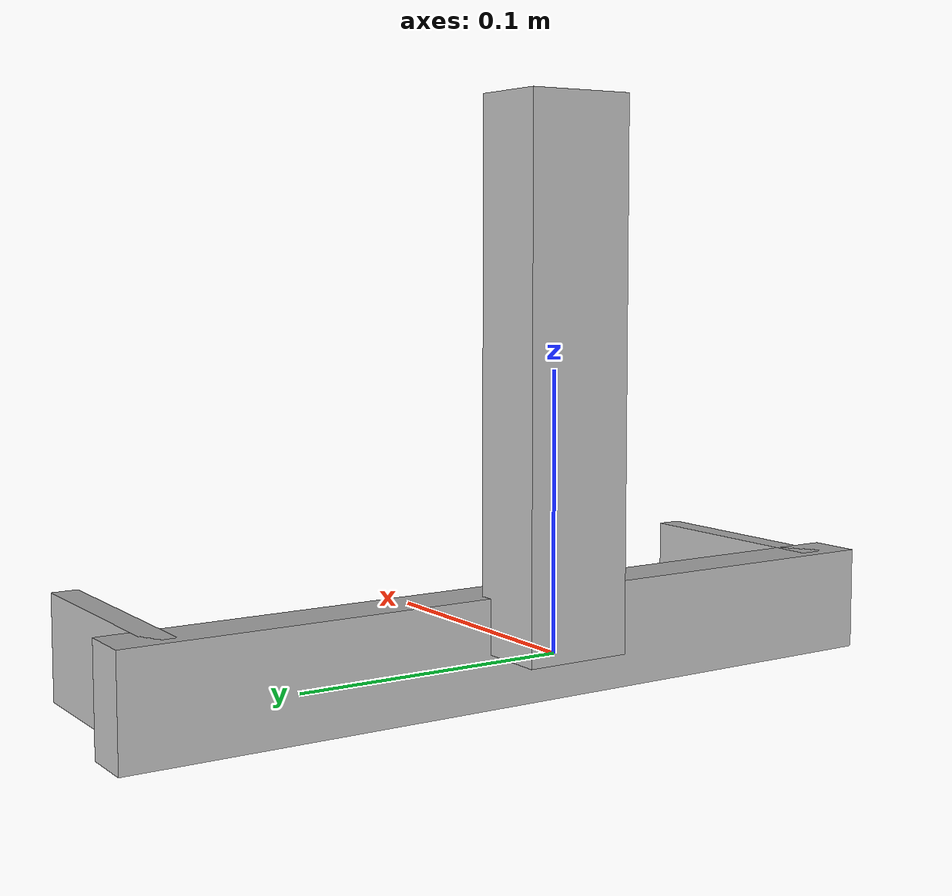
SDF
<?xml version="1.0"?>
<sdf version="1.4">
	<model name="simple_gripper">
		<link name="vertical_bar">
			<pose>0 0 0.0975 0 0 0</pose>
            <inertial>
                <pose>0 0 -0.0975 0 0 0</pose>
				<inertia>
					<ixx>0.01</ixx>
					<ixy>0</ixy>
					<ixz>0</ixz>
					<iyy>0.01</iyy>
					<iyz>0</iyz>
					<izz>0.01</izz>
				</inertia>
				<mass>10.0</mass>
			</inertial>
			<collision name="collision">
				<geometry>
					<box>
						<size>0.03 0.04 0.195</size>
					</box>
				</geometry>
			</collision>
			<visual name="visual">
				<geometry>
					<box>
						<size>0.03 0.04 0.195</size>
					</box>
				</geometry>
                <material>
                    <script>Gazebo/Black</script>
				</material>
			</visual>
		</link>
		<link name="horizontal_bar">
			<pose>0.02 0 0 0 0 0</pose>
			<inertial>
				<inertia>
					<ixx>0.01</ixx>
					<ixy>0</ixy>
					<ixz>0</ixz>
					<iyy>0.01</iyy>
					<iyz>0</iyz>
					<izz>0.01</izz>
				</inertia>
				<mass>2.0</mass>
			</inertial>
			<collision name="collision">
				<geometry>
					<box>
						<size>0.02 0.315 0.04</size>
					</box>
				</geometry>
			</collision>
			<visual name="visual">
				<geometry>
					<box>
						<size>0.02 0.315 0.04</size>
					</box>
				</geometry>
                <material>
                    <script>Gazebo/Black</script>
				</material>
			</visual>
		</link>
		<link name="left_grip">
			<pose>0.06 0.14 0 0 0 0</pose>
			<inertial>
				<inertia>
					<ixx>0.01</ixx>
					<ixy>0</ixy>
					<ixz>0</ixz>
					<iyy>0.01</iyy>
					<iyz>0</iyz>
					<izz>0.01</izz>
				</inertia>
				<mass>0.2</mass>
			</inertial>
			<collision name="collision">
				<geometry>
					<box>
						<size>0.09 0.01 0.04</size>
					</box>
				</geometry>
			</collision>
			<visual name="visual">
				<geometry>
					<box>
						<size>0.09 0.01 0.04</size>
					</box>
				</geometry>
                <material>
                    <script>Gazebo/Black</script>
				</material>
			</visual>
		</link>
		<link name="right_grip">
			<pose>0.06 -0.14 0 0 0 0</pose>
			<inertial>
				<inertia>
					<ixx>0.01</ixx>
					<ixy>0</ixy>
					<ixz>0</ixz>
					<iyy>0.01</iyy>
					<iyz>0</iyz>
					<izz>0.01</izz>
				</inertia>
				<mass>0.2</mass>
			</inertial>
			<collision name="collision">
				<geometry>
					<box>
						<size>0.09 0.01 0.04</size>
					</box>
				</geometry>
			</collision>
			<visual name="visual">
				<geometry>
					<box>
						<size>0.09 0.01 0.04</size>
					</box>
				</geometry>
                <material>
                    <script>Gazebo/Black</script>
				</material>
			</visual>
		</link>
        <static>false</static>
        <joint name="lift" type="prismatic">
            <child>horizontal_bar</child>
            <parent>vertical_bar</parent>
            <axis>
                <limit>
                    <lower>0.02</lower>
                    <upper>0.175</upper>
                </limit>
                <xyz>0 0 1</xyz>
            </axis>
        </joint>
        <joint name="grip_left" type="prismatic">
            <child>left_grip</child>
            <parent>horizontal_bar</parent>
            <axis>
                <limit>
                    <lower>-0.13</lower>
                    <upper>0</upper>
                </limit>
                <xyz>0 1 0</xyz>
            </axis>
        </joint>
        <joint name="grip_right" type="prismatic">
            <child>right_grip</child>
            <parent>horizontal_bar</parent>
            <axis>
                <limit>
                    <lower>0</lower>
                    <upper>0.13</upper>
                </limit>
                <xyz>0 1 0</xyz>
            </axis>
        </joint>
	</model>
</sdf>
